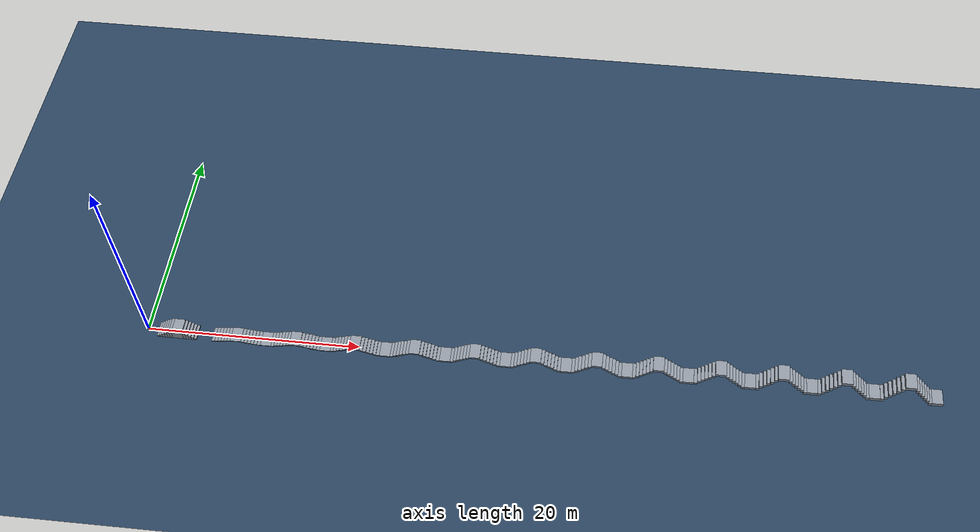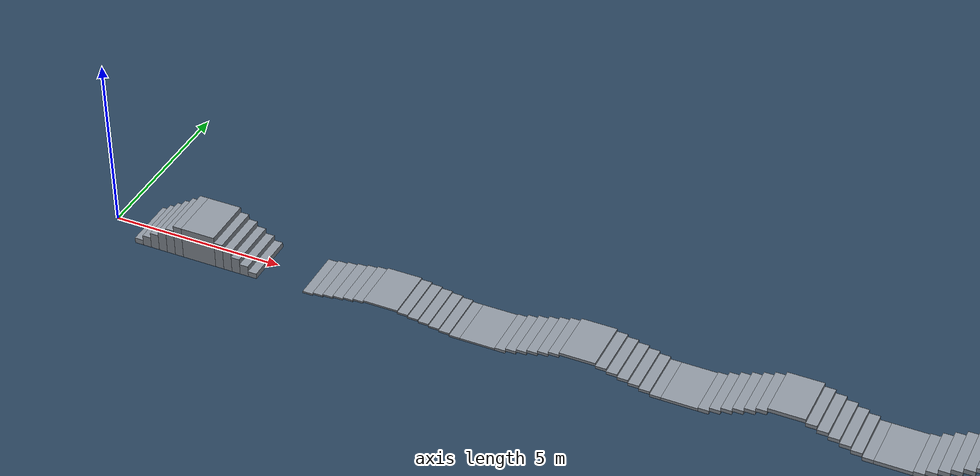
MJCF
<?xml version="1.0" encoding="utf-8"?>
<mujoco model="map_stairs">
  <statistic center="0 0 0.1" extent="0.8" />
  <visual>
    <headlight diffuse="0.6 0.6 0.6" ambient="0.3 0.3 0.3" specular="0 0 0" />
    <rgba haze="0.15 0.25 0.35 1" />
    <global azimuth="135" elevation="-25" />
    <quality shadowsize="4096" />
  </visual>
<asset>
    <material name="terrain" rgba="0.55 0.58 0.62 1" reflectance="0.05" />
    <texture type="skybox" builtin="gradient" rgb1="0.3 0.5 0.7" rgb2="0 0 0" width="512" height="3072" />
    <texture type="2d" name="groundplane" builtin="checker" mark="edge" rgb1="0.2 0.3 0.4" rgb2="0.1 0.2 0.3" markrgb="0.8 0.8 0.8" width="300" height="300" />
    <material name="groundplane" texture="groundplane" texuniform="true" texrepeat="5 5" reflectance="0.2" />
</asset>
  <worldbody>
    <light pos="0 0 3" dir="0 0 -1" directional="true" castshadow="true" />
<geom name="floor" size="0 0 0.05" type="plane" material="groundplane" />
    <body name="legacy_stair_series" pos="5 0 0">
    <geom pos="1.3 0.0 0.025" type="box" size="0.15 0.75 0.025" quat="1.0 0.0 0.0 0.0" material="terrain" />
    <geom pos="1.6 0.0 0.07500000000000001" type="box" size="0.15 0.75 0.025" quat="1.0 0.0 0.0 0.0" material="terrain" />
    <geom pos="1.9 0.0 0.125" type="box" size="0.15 0.75 0.025" quat="1.0 0.0 0.0 0.0" material="terrain" />
    <geom pos="2.2 0.0 0.17500000000000002" type="box" size="0.15 0.75 0.025" quat="1.0 0.0 0.0 0.0" material="terrain" />
    <geom pos="2.5 0.0 0.225" type="box" size="0.15 0.75 0.025" quat="1.0 0.0 0.0 0.0" material="terrain" />
    <geom pos="2.8 0.0 0.275" type="box" size="0.15 0.75 0.025" quat="1.0 0.0 0.0 0.0" material="terrain" />
    <geom pos="3.4499999999999997 0.0 0.32500000000000007" type="box" size="0.5 0.75 0.025" quat="1.0 0.0 0.0 0.0" material="terrain" />
    <geom pos="4.1 0.0 0.275" type="box" size="0.15 0.75 0.025" quat="1.0 0.0 0.0 0.0" material="terrain" />
    <geom pos="4.3999999999999995 0.0 0.22500000000000003" type="box" size="0.15 0.75 0.025" quat="1.0 0.0 0.0 0.0" material="terrain" />
    <geom pos="4.699999999999999 0.0 0.17500000000000002" type="box" size="0.15 0.75 0.025" quat="1.0 0.0 0.0 0.0" material="terrain" />
    <geom pos="5.0 0.0 0.125" type="box" size="0.15 0.75 0.025" quat="1.0 0.0 0.0 0.0" material="terrain" />
    <geom pos="5.3 0.0 0.07500000000000001" type="box" size="0.15 0.75 0.025" quat="1.0 0.0 0.0 0.0" material="terrain" />
    <geom pos="5.6 0.0 0.025000000000000022" type="box" size="0.15 0.75 0.025" quat="1.0 0.0 0.0 0.0" material="terrain" />
    <geom pos="6.25 0.0 0.025" type="box" size="0.5 0.75 0.025" quat="1.0 0.0 0.0 0.0" material="terrain" />
    <geom pos="6.898999999999999 0.0 0.04" type="box" size="0.15 0.75 0.04" quat="1.0 0.0 0.0 0.0" material="terrain" />
    <geom pos="7.198999999999999 0.0 0.12" type="box" size="0.15 0.75 0.04" quat="1.0 0.0 0.0 0.0" material="terrain" />
    <geom pos="7.498999999999999 0.0 0.2" type="box" size="0.15 0.75 0.04" quat="1.0 0.0 0.0 0.0" material="terrain" />
    <geom pos="7.7989999999999995 0.0 0.28" type="box" size="0.15 0.75 0.04" quat="1.0 0.0 0.0 0.0" material="terrain" />
    <geom pos="8.099 0.0 0.36" type="box" size="0.15 0.75 0.04" quat="1.0 0.0 0.0 0.0" material="terrain" />
    <geom pos="8.399 0.0 0.44" type="box" size="0.15 0.75 0.04" quat="1.0 0.0 0.0 0.0" material="terrain" />
    <geom pos="9.049 0.0 0.52" type="box" size="0.5 0.75 0.04" quat="1.0 0.0 0.0 0.0" material="terrain" />
    <geom pos="9.698999999999998 0.0 0.44" type="box" size="0.15 0.75 0.04" quat="1.0 0.0 0.0 0.0" material="terrain" />
    <geom pos="9.998999999999999 0.0 0.36" type="box" size="0.15 0.75 0.04" quat="1.0 0.0 0.0 0.0" material="terrain" />
    <geom pos="10.299 0.0 0.28" type="box" size="0.15 0.75 0.04" quat="1.0 0.0 0.0 0.0" material="terrain" />
    <geom pos="10.598999999999998 0.0 0.2" type="box" size="0.15 0.75 0.04" quat="1.0 0.0 0.0 0.0" material="terrain" />
    <geom pos="10.899 0.0 0.12" type="box" size="0.15 0.75 0.04" quat="1.0 0.0 0.0 0.0" material="terrain" />
    <geom pos="11.198999999999998 0.0 0.03999999999999998" type="box" size="0.15 0.75 0.04" quat="1.0 0.0 0.0 0.0" material="terrain" />
    <geom pos="11.849 0.0 0.04" type="box" size="0.5 0.75 0.04" quat="1.0 0.0 0.0 0.0" material="terrain" />
    <geom pos="12.498 0.0 0.055" type="box" size="0.15 0.75 0.055" quat="1.0 0.0 0.0 0.0" material="terrain" />
    <geom pos="12.797999999999998 0.0 0.165" type="box" size="0.15 0.75 0.055" quat="1.0 0.0 0.0 0.0" material="terrain" />
    <geom pos="13.097999999999999 0.0 0.275" type="box" size="0.15 0.75 0.055" quat="1.0 0.0 0.0 0.0" material="terrain" />
    <geom pos="13.397999999999998 0.0 0.385" type="box" size="0.15 0.75 0.055" quat="1.0 0.0 0.0 0.0" material="terrain" />
    <geom pos="13.697999999999999 0.0 0.495" type="box" size="0.15 0.75 0.055" quat="1.0 0.0 0.0 0.0" material="terrain" />
    <geom pos="13.997999999999998 0.0 0.605" type="box" size="0.15 0.75 0.055" quat="1.0 0.0 0.0 0.0" material="terrain" />
    <geom pos="14.647999999999998 0.0 0.7150000000000001" type="box" size="0.5 0.75 0.055" quat="1.0 0.0 0.0 0.0" material="terrain" />
    <geom pos="15.297999999999998 0.0 0.605" type="box" size="0.15 0.75 0.055" quat="1.0 0.0 0.0 0.0" material="terrain" />
    <geom pos="15.597999999999999 0.0 0.495" type="box" size="0.15 0.75 0.055" quat="1.0 0.0 0.0 0.0" material="terrain" />
    <geom pos="15.897999999999998 0.0 0.385" type="box" size="0.15 0.75 0.055" quat="1.0 0.0 0.0 0.0" material="terrain" />
    <geom pos="16.197999999999997 0.0 0.27499999999999997" type="box" size="0.15 0.75 0.055" quat="1.0 0.0 0.0 0.0" material="terrain" />
    <geom pos="16.497999999999998 0.0 0.16499999999999998" type="box" size="0.15 0.75 0.055" quat="1.0 0.0 0.0 0.0" material="terrain" />
    <geom pos="16.798 0.0 0.05499999999999994" type="box" size="0.15 0.75 0.055" quat="1.0 0.0 0.0 0.0" material="terrain" />
    <geom pos="17.448 0.0 0.055" type="box" size="0.5 0.75 0.055" quat="1.0 0.0 0.0 0.0" material="terrain" />
    <geom pos="18.096999999999998 0.0 0.07" type="box" size="0.15 0.75 0.07" quat="1.0 0.0 0.0 0.0" material="terrain" />
    <geom pos="18.397 0.0 0.21000000000000002" type="box" size="0.15 0.75 0.07" quat="1.0 0.0 0.0 0.0" material="terrain" />
    <geom pos="18.696999999999996 0.0 0.35000000000000003" type="box" size="0.15 0.75 0.07" quat="1.0 0.0 0.0 0.0" material="terrain" />
    <geom pos="18.996999999999996 0.0 0.49000000000000005" type="box" size="0.15 0.75 0.07" quat="1.0 0.0 0.0 0.0" material="terrain" />
    <geom pos="19.296999999999997 0.0 0.6300000000000001" type="box" size="0.15 0.75 0.07" quat="1.0 0.0 0.0 0.0" material="terrain" />
    <geom pos="19.596999999999998 0.0 0.77" type="box" size="0.15 0.75 0.07" quat="1.0 0.0 0.0 0.0" material="terrain" />
    <geom pos="20.246999999999996 0.0 0.9100000000000001" type="box" size="0.5 0.75 0.07" quat="1.0 0.0 0.0 0.0" material="terrain" />
    <geom pos="20.897 0.0 0.77" type="box" size="0.15 0.75 0.07" quat="1.0 0.0 0.0 0.0" material="terrain" />
    <geom pos="21.196999999999996 0.0 0.63" type="box" size="0.15 0.75 0.07" quat="1.0 0.0 0.0 0.0" material="terrain" />
    <geom pos="21.496999999999996 0.0 0.49" type="box" size="0.15 0.75 0.07" quat="1.0 0.0 0.0 0.0" material="terrain" />
    <geom pos="21.796999999999997 0.0 0.35" type="box" size="0.15 0.75 0.07" quat="1.0 0.0 0.0 0.0" material="terrain" />
    <geom pos="22.096999999999998 0.0 0.20999999999999996" type="box" size="0.15 0.75 0.07" quat="1.0 0.0 0.0 0.0" material="terrain" />
    <geom pos="22.397 0.0 0.06999999999999995" type="box" size="0.15 0.75 0.07" quat="1.0 0.0 0.0 0.0" material="terrain" />
    <geom pos="23.046999999999997 0.0 0.07" type="box" size="0.5 0.75 0.07" quat="1.0 0.0 0.0 0.0" material="terrain" />
    <geom pos="23.695999999999998 0.0 0.085" type="box" size="0.15 0.75 0.085" quat="1.0 0.0 0.0 0.0" material="terrain" />
    <geom pos="23.996 0.0 0.255" type="box" size="0.15 0.75 0.085" quat="1.0 0.0 0.0 0.0" material="terrain" />
    <geom pos="24.295999999999996 0.0 0.42500000000000004" type="box" size="0.15 0.75 0.085" quat="1.0 0.0 0.0 0.0" material="terrain" />
    <geom pos="24.595999999999997 0.0 0.5950000000000001" type="box" size="0.15 0.75 0.085" quat="1.0 0.0 0.0 0.0" material="terrain" />
    <geom pos="24.895999999999997 0.0 0.765" type="box" size="0.15 0.75 0.085" quat="1.0 0.0 0.0 0.0" material="terrain" />
    <geom pos="25.195999999999998 0.0 0.935" type="box" size="0.15 0.75 0.085" quat="1.0 0.0 0.0 0.0" material="terrain" />
    <geom pos="25.845999999999997 0.0 1.105" type="box" size="0.5 0.75 0.085" quat="1.0 0.0 0.0 0.0" material="terrain" />
    <geom pos="26.495999999999995 0.0 0.935" type="box" size="0.15 0.75 0.085" quat="1.0 0.0 0.0 0.0" material="terrain" />
    <geom pos="26.795999999999996 0.0 0.765" type="box" size="0.15 0.75 0.085" quat="1.0 0.0 0.0 0.0" material="terrain" />
    <geom pos="27.095999999999997 0.0 0.595" type="box" size="0.15 0.75 0.085" quat="1.0 0.0 0.0 0.0" material="terrain" />
    <geom pos="27.395999999999997 0.0 0.42500000000000004" type="box" size="0.15 0.75 0.085" quat="1.0 0.0 0.0 0.0" material="terrain" />
    <geom pos="27.695999999999998 0.0 0.255" type="box" size="0.15 0.75 0.085" quat="1.0 0.0 0.0 0.0" material="terrain" />
    <geom pos="27.995999999999995 0.0 0.08499999999999996" type="box" size="0.15 0.75 0.085" quat="1.0 0.0 0.0 0.0" material="terrain" />
    <geom pos="28.645999999999997 0.0 0.085" type="box" size="0.5 0.75 0.085" quat="1.0 0.0 0.0 0.0" material="terrain" />
    <geom pos="29.294999999999998 0.0 0.1" type="box" size="0.15 0.75 0.1" quat="1.0 0.0 0.0 0.0" material="terrain" />
    <geom pos="29.595 0.0 0.30000000000000004" type="box" size="0.15 0.75 0.1" quat="1.0 0.0 0.0 0.0" material="terrain" />
    <geom pos="29.894999999999996 0.0 0.5" type="box" size="0.15 0.75 0.1" quat="1.0 0.0 0.0 0.0" material="terrain" />
    <geom pos="30.194999999999997 0.0 0.7000000000000001" type="box" size="0.15 0.75 0.1" quat="1.0 0.0 0.0 0.0" material="terrain" />
    <geom pos="30.494999999999997 0.0 0.9" type="box" size="0.15 0.75 0.1" quat="1.0 0.0 0.0 0.0" material="terrain" />
    <geom pos="30.794999999999998 0.0 1.1" type="box" size="0.15 0.75 0.1" quat="1.0 0.0 0.0 0.0" material="terrain" />
    <geom pos="31.444999999999997 0.0 1.3000000000000003" type="box" size="0.5 0.75 0.1" quat="1.0 0.0 0.0 0.0" material="terrain" />
    <geom pos="32.095 0.0 1.1" type="box" size="0.15 0.75 0.1" quat="1.0 0.0 0.0 0.0" material="terrain" />
    <geom pos="32.394999999999996 0.0 0.9000000000000001" type="box" size="0.15 0.75 0.1" quat="1.0 0.0 0.0 0.0" material="terrain" />
    <geom pos="32.695 0.0 0.7000000000000001" type="box" size="0.15 0.75 0.1" quat="1.0 0.0 0.0 0.0" material="terrain" />
    <geom pos="32.995 0.0 0.5" type="box" size="0.15 0.75 0.1" quat="1.0 0.0 0.0 0.0" material="terrain" />
    <geom pos="33.294999999999995 0.0 0.30000000000000004" type="box" size="0.15 0.75 0.1" quat="1.0 0.0 0.0 0.0" material="terrain" />
    <geom pos="33.595 0.0 0.10000000000000009" type="box" size="0.15 0.75 0.1" quat="1.0 0.0 0.0 0.0" material="terrain" />
    <geom pos="34.245 0.0 0.1" type="box" size="0.5 0.75 0.1" quat="1.0 0.0 0.0 0.0" material="terrain" />
    <geom pos="34.89399999999999 0.0 0.115" type="box" size="0.15 0.75 0.115" quat="1.0 0.0 0.0 0.0" material="terrain" />
    <geom pos="35.193999999999996 0.0 0.34500000000000003" type="box" size="0.15 0.75 0.115" quat="1.0 0.0 0.0 0.0" material="terrain" />
    <geom pos="35.49399999999999 0.0 0.5750000000000001" type="box" size="0.15 0.75 0.115" quat="1.0 0.0 0.0 0.0" material="terrain" />
    <geom pos="35.794 0.0 0.805" type="box" size="0.15 0.75 0.115" quat="1.0 0.0 0.0 0.0" material="terrain" />
    <geom pos="36.093999999999994 0.0 1.0350000000000001" type="box" size="0.15 0.75 0.115" quat="1.0 0.0 0.0 0.0" material="terrain" />
    <geom pos="36.39399999999999 0.0 1.2650000000000001" type="box" size="0.15 0.75 0.115" quat="1.0 0.0 0.0 0.0" material="terrain" />
    <geom pos="37.044 0.0 1.495" type="box" size="0.5 0.75 0.115" quat="1.0 0.0 0.0 0.0" material="terrain" />
    <geom pos="37.693999999999996 0.0 1.2650000000000001" type="box" size="0.15 0.75 0.115" quat="1.0 0.0 0.0 0.0" material="terrain" />
    <geom pos="37.99399999999999 0.0 1.0350000000000001" type="box" size="0.15 0.75 0.115" quat="1.0 0.0 0.0 0.0" material="terrain" />
    <geom pos="38.294 0.0 0.8050000000000002" type="box" size="0.15 0.75 0.115" quat="1.0 0.0 0.0 0.0" material="terrain" />
    <geom pos="38.593999999999994 0.0 0.5750000000000001" type="box" size="0.15 0.75 0.115" quat="1.0 0.0 0.0 0.0" material="terrain" />
    <geom pos="38.89399999999999 0.0 0.3450000000000001" type="box" size="0.15 0.75 0.115" quat="1.0 0.0 0.0 0.0" material="terrain" />
    <geom pos="39.193999999999996 0.0 0.11499999999999999" type="box" size="0.15 0.75 0.115" quat="1.0 0.0 0.0 0.0" material="terrain" />
    <geom pos="39.843999999999994 0.0 0.115" type="box" size="0.5 0.75 0.115" quat="1.0 0.0 0.0 0.0" material="terrain" />
    <geom pos="40.49299999999999 0.0 0.13" type="box" size="0.15 0.75 0.13" quat="1.0 0.0 0.0 0.0" material="terrain" />
    <geom pos="40.79299999999999 0.0 0.39" type="box" size="0.15 0.75 0.13" quat="1.0 0.0 0.0 0.0" material="terrain" />
    <geom pos="41.09299999999999 0.0 0.65" type="box" size="0.15 0.75 0.13" quat="1.0 0.0 0.0 0.0" material="terrain" />
    <geom pos="41.392999999999994 0.0 0.91" type="box" size="0.15 0.75 0.13" quat="1.0 0.0 0.0 0.0" material="terrain" />
    <geom pos="41.69299999999999 0.0 1.17" type="box" size="0.15 0.75 0.13" quat="1.0 0.0 0.0 0.0" material="terrain" />
    <geom pos="41.99299999999999 0.0 1.4300000000000002" type="box" size="0.15 0.75 0.13" quat="1.0 0.0 0.0 0.0" material="terrain" />
    <geom pos="42.642999999999994 0.0 1.69" type="box" size="0.5 0.75 0.13" quat="1.0 0.0 0.0 0.0" material="terrain" />
    <geom pos="43.29299999999999 0.0 1.4300000000000002" type="box" size="0.15 0.75 0.13" quat="1.0 0.0 0.0 0.0" material="terrain" />
    <geom pos="43.59299999999999 0.0 1.1700000000000002" type="box" size="0.15 0.75 0.13" quat="1.0 0.0 0.0 0.0" material="terrain" />
    <geom pos="43.892999999999994 0.0 0.9100000000000001" type="box" size="0.15 0.75 0.13" quat="1.0 0.0 0.0 0.0" material="terrain" />
    <geom pos="44.19299999999999 0.0 0.6500000000000001" type="box" size="0.15 0.75 0.13" quat="1.0 0.0 0.0 0.0" material="terrain" />
    <geom pos="44.49299999999999 0.0 0.3900000000000001" type="box" size="0.15 0.75 0.13" quat="1.0 0.0 0.0 0.0" material="terrain" />
    <geom pos="44.79299999999999 0.0 0.13000000000000012" type="box" size="0.15 0.75 0.13" quat="1.0 0.0 0.0 0.0" material="terrain" />
    <geom pos="45.44299999999999 0.0 0.13" type="box" size="0.5 0.75 0.13" quat="1.0 0.0 0.0 0.0" material="terrain" />
    <geom pos="46.091999999999985 0.0 0.145" type="box" size="0.15 0.75 0.145" quat="1.0 0.0 0.0 0.0" material="terrain" />
    <geom pos="46.39199999999999 0.0 0.43499999999999994" type="box" size="0.15 0.75 0.145" quat="1.0 0.0 0.0 0.0" material="terrain" />
    <geom pos="46.691999999999986 0.0 0.725" type="box" size="0.15 0.75 0.145" quat="1.0 0.0 0.0 0.0" material="terrain" />
    <geom pos="46.99199999999999 0.0 1.015" type="box" size="0.15 0.75 0.145" quat="1.0 0.0 0.0 0.0" material="terrain" />
    <geom pos="47.29199999999999 0.0 1.305" type="box" size="0.15 0.75 0.145" quat="1.0 0.0 0.0 0.0" material="terrain" />
    <geom pos="47.591999999999985 0.0 1.595" type="box" size="0.15 0.75 0.145" quat="1.0 0.0 0.0 0.0" material="terrain" />
    <geom pos="48.24199999999999 0.0 1.8849999999999998" type="box" size="0.5 0.75 0.145" quat="1.0 0.0 0.0 0.0" material="terrain" />
    <geom pos="48.89199999999999 0.0 1.5949999999999998" type="box" size="0.15 0.75 0.145" quat="1.0 0.0 0.0 0.0" material="terrain" />
    <geom pos="49.191999999999986 0.0 1.3049999999999997" type="box" size="0.15 0.75 0.145" quat="1.0 0.0 0.0 0.0" material="terrain" />
    <geom pos="49.49199999999999 0.0 1.0149999999999997" type="box" size="0.15 0.75 0.145" quat="1.0 0.0 0.0 0.0" material="terrain" />
    <geom pos="49.79199999999999 0.0 0.7249999999999999" type="box" size="0.15 0.75 0.145" quat="1.0 0.0 0.0 0.0" material="terrain" />
    <geom pos="50.091999999999985 0.0 0.43499999999999983" type="box" size="0.15 0.75 0.145" quat="1.0 0.0 0.0 0.0" material="terrain" />
    <geom pos="50.39199999999999 0.0 0.1449999999999998" type="box" size="0.15 0.75 0.145" quat="1.0 0.0 0.0 0.0" material="terrain" />
    <geom pos="51.04199999999999 0.0 0.145" type="box" size="0.5 0.75 0.145" quat="1.0 0.0 0.0 0.0" material="terrain" />
    <geom pos="51.69099999999998 0.0 0.16" type="box" size="0.15 0.75 0.16" quat="1.0 0.0 0.0 0.0" material="terrain" />
    <geom pos="51.990999999999985 0.0 0.48" type="box" size="0.15 0.75 0.16" quat="1.0 0.0 0.0 0.0" material="terrain" />
    <geom pos="52.29099999999998 0.0 0.8" type="box" size="0.15 0.75 0.16" quat="1.0 0.0 0.0 0.0" material="terrain" />
    <geom pos="52.59099999999999 0.0 1.12" type="box" size="0.15 0.75 0.16" quat="1.0 0.0 0.0 0.0" material="terrain" />
    <geom pos="52.890999999999984 0.0 1.44" type="box" size="0.15 0.75 0.16" quat="1.0 0.0 0.0 0.0" material="terrain" />
    <geom pos="53.19099999999998 0.0 1.76" type="box" size="0.15 0.75 0.16" quat="1.0 0.0 0.0 0.0" material="terrain" />
    <geom pos="53.84099999999999 0.0 2.08" type="box" size="0.5 0.75 0.16" quat="1.0 0.0 0.0 0.0" material="terrain" />
    <geom pos="54.490999999999985 0.0 1.76" type="box" size="0.15 0.75 0.16" quat="1.0 0.0 0.0 0.0" material="terrain" />
    <geom pos="54.79099999999998 0.0 1.44" type="box" size="0.15 0.75 0.16" quat="1.0 0.0 0.0 0.0" material="terrain" />
    <geom pos="55.09099999999999 0.0 1.12" type="box" size="0.15 0.75 0.16" quat="1.0 0.0 0.0 0.0" material="terrain" />
    <geom pos="55.390999999999984 0.0 0.8" type="box" size="0.15 0.75 0.16" quat="1.0 0.0 0.0 0.0" material="terrain" />
    <geom pos="55.69099999999998 0.0 0.48" type="box" size="0.15 0.75 0.16" quat="1.0 0.0 0.0 0.0" material="terrain" />
    <geom pos="55.990999999999985 0.0 0.15999999999999992" type="box" size="0.15 0.75 0.16" quat="1.0 0.0 0.0 0.0" material="terrain" />
    <geom pos="56.640999999999984 0.0 0.16" type="box" size="0.5 0.75 0.16" quat="1.0 0.0 0.0 0.0" material="terrain" />
    <geom pos="57.28999999999998 0.0 0.175" type="box" size="0.15 0.75 0.175" quat="1.0 0.0 0.0 0.0" material="terrain" />
    <geom pos="57.58999999999998 0.0 0.5249999999999999" type="box" size="0.15 0.75 0.175" quat="1.0 0.0 0.0 0.0" material="terrain" />
    <geom pos="57.88999999999998 0.0 0.875" type="box" size="0.15 0.75 0.175" quat="1.0 0.0 0.0 0.0" material="terrain" />
    <geom pos="58.18999999999998 0.0 1.2249999999999999" type="box" size="0.15 0.75 0.175" quat="1.0 0.0 0.0 0.0" material="terrain" />
    <geom pos="58.48999999999998 0.0 1.575" type="box" size="0.15 0.75 0.175" quat="1.0 0.0 0.0 0.0" material="terrain" />
    <geom pos="58.78999999999998 0.0 1.9249999999999998" type="box" size="0.15 0.75 0.175" quat="1.0 0.0 0.0 0.0" material="terrain" />
    <geom pos="59.43999999999998 0.0 2.2749999999999995" type="box" size="0.5 0.75 0.175" quat="1.0 0.0 0.0 0.0" material="terrain" />
    <geom pos="60.08999999999998 0.0 1.9249999999999996" type="box" size="0.15 0.75 0.175" quat="1.0 0.0 0.0 0.0" material="terrain" />
    <geom pos="60.38999999999998 0.0 1.5749999999999997" type="box" size="0.15 0.75 0.175" quat="1.0 0.0 0.0 0.0" material="terrain" />
    <geom pos="60.68999999999998 0.0 1.2249999999999996" type="box" size="0.15 0.75 0.175" quat="1.0 0.0 0.0 0.0" material="terrain" />
    <geom pos="60.98999999999998 0.0 0.8749999999999998" type="box" size="0.15 0.75 0.175" quat="1.0 0.0 0.0 0.0" material="terrain" />
    <geom pos="61.28999999999998 0.0 0.5249999999999997" type="box" size="0.15 0.75 0.175" quat="1.0 0.0 0.0 0.0" material="terrain" />
    <geom pos="61.58999999999998 0.0 0.1749999999999996" type="box" size="0.15 0.75 0.175" quat="1.0 0.0 0.0 0.0" material="terrain" />
    <geom pos="62.23999999999998 0.0 0.175" type="box" size="0.5 0.75 0.175" quat="1.0 0.0 0.0 0.0" material="terrain" />
    <geom pos="62.888999999999974 0.0 0.19" type="box" size="0.15 0.75 0.19" quat="1.0 0.0 0.0 0.0" material="terrain" />
    <geom pos="63.18899999999998 0.0 0.5700000000000001" type="box" size="0.15 0.75 0.19" quat="1.0 0.0 0.0 0.0" material="terrain" />
    <geom pos="63.488999999999976 0.0 0.95" type="box" size="0.15 0.75 0.19" quat="1.0 0.0 0.0 0.0" material="terrain" />
    <geom pos="63.78899999999998 0.0 1.33" type="box" size="0.15 0.75 0.19" quat="1.0 0.0 0.0 0.0" material="terrain" />
    <geom pos="64.08899999999997 0.0 1.71" type="box" size="0.15 0.75 0.19" quat="1.0 0.0 0.0 0.0" material="terrain" />
    <geom pos="64.38899999999998 0.0 2.09" type="box" size="0.15 0.75 0.19" quat="1.0 0.0 0.0 0.0" material="terrain" />
    <geom pos="65.03899999999997 0.0 2.47" type="box" size="0.5 0.75 0.19" quat="1.0 0.0 0.0 0.0" material="terrain" />
    <geom pos="65.68899999999998 0.0 2.0900000000000003" type="box" size="0.15 0.75 0.19" quat="1.0 0.0 0.0 0.0" material="terrain" />
    <geom pos="65.98899999999998 0.0 1.7100000000000004" type="box" size="0.15 0.75 0.19" quat="1.0 0.0 0.0 0.0" material="terrain" />
    <geom pos="66.28899999999997 0.0 1.3300000000000003" type="box" size="0.15 0.75 0.19" quat="1.0 0.0 0.0 0.0" material="terrain" />
    <geom pos="66.58899999999997 0.0 0.9500000000000002" type="box" size="0.15 0.75 0.19" quat="1.0 0.0 0.0 0.0" material="terrain" />
    <geom pos="66.88899999999998 0.0 0.5700000000000003" type="box" size="0.15 0.75 0.19" quat="1.0 0.0 0.0 0.0" material="terrain" />
    <geom pos="67.18899999999998 0.0 0.1900000000000004" type="box" size="0.15 0.75 0.19" quat="1.0 0.0 0.0 0.0" material="terrain" />
    <geom pos="67.83899999999997 0.0 0.19" type="box" size="0.5 0.75 0.19" quat="1.0 0.0 0.0 0.0" material="terrain" />
    </body>

    <geom name="stairs_h16_d25_up_01" pos="1.125 0.0 0.08" type="box" size="0.125 0.75 0.08" material="terrain" />
    <geom name="stairs_h16_d25_up_02" pos="1.375 0.0 0.16" type="box" size="0.125 0.75 0.16" material="terrain" />
    <geom name="stairs_h16_d25_up_03" pos="1.625 0.0 0.24" type="box" size="0.125 0.75 0.24" material="terrain" />
    <geom name="stairs_h16_d25_up_04" pos="1.875 0.0 0.32" type="box" size="0.125 0.75 0.32" material="terrain" />
    <geom name="stairs_h16_d25_up_05" pos="2.125 0.0 0.40" type="box" size="0.125 0.75 0.40" material="terrain" />
    <geom name="stairs_h16_d25_up_06" pos="2.375 0.0 0.48" type="box" size="0.125 0.75 0.48" material="terrain" />
    <geom name="stairs_h16_d25_platform" pos="3.0 0.0 0.48" type="box" size="0.5 0.75 0.48" material="terrain" />
    <geom name="stairs_h16_d25_down_05" pos="3.625 0.0 0.40" type="box" size="0.125 0.75 0.40" material="terrain" />
    <geom name="stairs_h16_d25_down_04" pos="3.875 0.0 0.32" type="box" size="0.125 0.75 0.32" material="terrain" />
    <geom name="stairs_h16_d25_down_03" pos="4.125 0.0 0.24" type="box" size="0.125 0.75 0.24" material="terrain" />
    <geom name="stairs_h16_d25_down_02" pos="4.375 0.0 0.16" type="box" size="0.125 0.75 0.16" material="terrain" />
    <geom name="stairs_h16_d25_down_01" pos="4.625 0.0 0.08" type="box" size="0.125 0.75 0.08" material="terrain" />
  </worldbody>
</mujoco>
